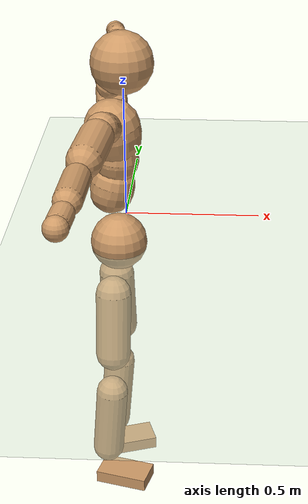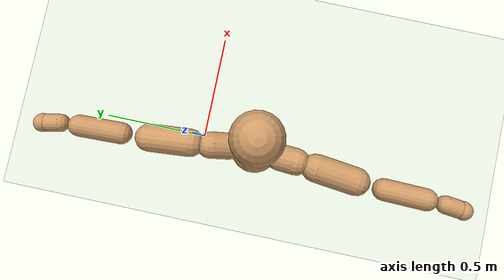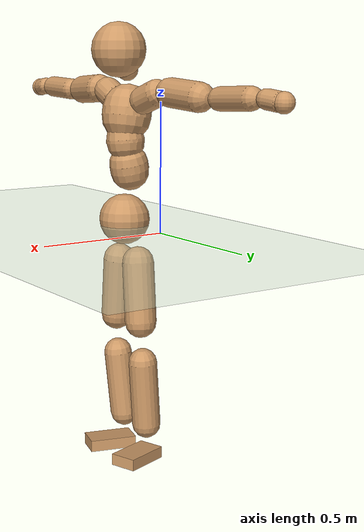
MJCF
<mujoco model="humanoid">
  <compiler coordinate="local"/>
  <default>
    <joint damping="0.0" armature="0.01" stiffness="0.0" limited="true"/>
    <geom conaffinity="1" condim="3" contype="7" margin="0.001" rgba="0.8 0.6 .4 1"/>
  </default>
  <asset>
    <texture type="skybox" builtin="gradient" rgb1=".4 .5 .6" rgb2="0 0 0" width="100" height="100"/>
    <texture builtin="flat" height="1278" mark="cross" markrgb="1 1 1" name="texgeom" random="0.01" rgb1="0.8 0.6 0.4" rgb2="0.8 0.6 0.4" type="cube" width="127"/>
    <texture builtin="checker" height="100" name="texplane" rgb1="0 0 0" rgb2="0.8 0.8 0.8" type="2d" width="100"/>
    <material name="MatPlane" reflectance="0.5" shininess="1" specular="1" texrepeat="60 60" texture="texplane"/>
    <material name="geom" texture="texgeom" texuniform="true"/>
  </asset>
  <worldbody>
    <light cutoff="100" diffuse="1 1 1" dir="-0 0 -1.3" directional="true" exponent="1" pos="0 0 1.3" specular=".1 .1 .1"/>
    <geom conaffinity="1" condim="3" name="floor" pos="0 0 0" rgba="0.8 0.9 0.8 1" size="100 100 .2" type="plane" material="MatPlane"/>
    <body name="Pelvis" pos="-0.0022 -0.263 0.0211">
      <freejoint name="Pelvis"/>
      <geom type="sphere" contype="1" conaffinity="1" density="500" size="0.1015" pos="0.0000 0.0000 0.0000" name="Pelvis"/>
      <body name="L_Hip" pos="-0.0215 0.0608 -0.0884">
        <joint name="L_Hip_x" type="hinge" pos="0 0 0" axis="1 0 0" stiffness="800" damping="80" armature="0.02" range="-180.0000 180.0000"/>
        <joint name="L_Hip_y" type="hinge" pos="0 0 0" axis="0 1 0" stiffness="800" damping="80" armature="0.02" range="-180.0000 180.0000"/>
        <joint name="L_Hip_z" type="hinge" pos="0 0 0" axis="0 0 1" stiffness="800" damping="80" armature="0.02" range="-180.0000 180.0000"/>
        <geom type="capsule" contype="1" conaffinity="1" density="500" fromto="0.0015 0.0087 -0.0803 0.0060 0.0349 -0.3211" size="0.064" name="L_Hip"/>
        <body name="L_Knee" pos="0.0074 0.0437 -0.4013">
          <joint name="L_Knee_x" type="hinge" pos="0 0 0" axis="1 0 0" stiffness="800" damping="80" armature="0.02" range="-180.0000 180.0000"/>
          <joint name="L_Knee_y" type="hinge" pos="0 0 0" axis="0 1 0" stiffness="800" damping="80" armature="0.02" range="-180.0000 180.0000"/>
          <joint name="L_Knee_z" type="hinge" pos="0 0 0" axis="0 0 1" stiffness="800" damping="80" armature="0.02" range="-180.0000 180.0000"/>
          <geom type="capsule" contype="1" conaffinity="1" density="500" fromto="-0.0080 -0.0033 -0.0895 -0.0320 -0.0131 -0.3580" size="0.0579" name="L_Knee"/>
          <body name="L_Ankle" pos="-0.04 -0.0163 -0.4475">
            <joint name="L_Ankle_x" type="hinge" pos="0 0 0" axis="1 0 0" stiffness="800" damping="80" armature="0.02" range="-180.0000 180.0000"/>
            <joint name="L_Ankle_y" type="hinge" pos="0 0 0" axis="0 1 0" stiffness="800" damping="80" armature="0.02" range="-180.0000 180.0000"/>
            <joint name="L_Ankle_z" type="hinge" pos="0 0 0" axis="0 0 1" stiffness="800" damping="80" armature="0.02" range="-180.0000 180.0000"/>
            <geom type="box" contype="1" conaffinity="1" density="500" pos="0.0648 0.0217 -0.0321" size="0.0938 0.0548 0.0232" quat="0.9870 0.0000 0.0000 0.1610" name="L_Ankle"/>
            <body name="L_Toe" pos="0.1295 0.0434 -0.0642">
              <joint name="L_Toe_x" type="hinge" pos="0 0 0" axis="1 0 0" stiffness="500" damping="50" armature="0.02" range="-180.0000 180.0000"/>
              <joint name="L_Toe_y" type="hinge" pos="0 0 0" axis="0 1 0" stiffness="500" damping="50" armature="0.02" range="-180.0000 180.0000"/>
              <joint name="L_Toe_z" type="hinge" pos="0 0 0" axis="0 0 1" stiffness="500" damping="50" armature="0.02" range="-180.0000 180.0000"/>
              <geom type="box" contype="1" conaffinity="1" density="500" pos="0.0000 0.0000 0.0321" size="0.0011 0.0026 0.0012" quat="0.9862 0.0000 0.0000 0.1655" name="L_Toe"/>
            </body>
          </body>
        </body>
      </body>
      <body name="R_Hip" pos="-0.0174 -0.0627 -0.0971">
        <joint name="R_Hip_x" type="hinge" pos="0 0 0" axis="1 0 0" stiffness="800" damping="80" armature="0.02" range="-180.0000 180.0000"/>
        <joint name="R_Hip_y" type="hinge" pos="0 0 0" axis="0 1 0" stiffness="800" damping="80" armature="0.02" range="-180.0000 180.0000"/>
        <joint name="R_Hip_z" type="hinge" pos="0 0 0" axis="0 0 1" stiffness="800" damping="80" armature="0.02" range="-180.0000 180.0000"/>
        <geom type="capsule" contype="1" conaffinity="1" density="500" fromto="-0.0012 -0.0091 -0.0799 -0.0050 -0.0362 -0.3196" size="0.0636" name="R_Hip"/>
        <body name="R_Knee" pos="-0.0062 -0.0453 -0.3995">
          <joint name="R_Knee_x" type="hinge" pos="0 0 0" axis="1 0 0" stiffness="800" damping="80" armature="0.02" range="-180.0000 180.0000"/>
          <joint name="R_Knee_y" type="hinge" pos="0 0 0" axis="0 1 0" stiffness="800" damping="80" armature="0.02" range="-180.0000 180.0000"/>
          <joint name="R_Knee_z" type="hinge" pos="0 0 0" axis="0 0 1" stiffness="800" damping="80" armature="0.02" range="-180.0000 180.0000"/>
          <geom type="capsule" contype="1" conaffinity="1" density="500" fromto="-0.0074 0.0042 -0.0882 -0.0296 0.0168 -0.3528" size="0.058" name="R_Knee"/>
          <body name="R_Ankle" pos="-0.037 0.021 -0.441">
            <joint name="R_Ankle_x" type="hinge" pos="0 0 0" axis="1 0 0" stiffness="800" damping="80" armature="0.02" range="-180.0000 180.0000"/>
            <joint name="R_Ankle_y" type="hinge" pos="0 0 0" axis="0 1 0" stiffness="800" damping="80" armature="0.02" range="-180.0000 180.0000"/>
            <joint name="R_Ankle_z" type="hinge" pos="0 0 0" axis="0 0 1" stiffness="800" damping="80" armature="0.02" range="-180.0000 180.0000"/>
            <geom type="box" contype="1" conaffinity="1" density="500" pos="0.0700 -0.0185 -0.0327" size="0.0975 0.0545 0.0233" quat="0.9917 0.0000 0.0000 -0.1286" name="R_Ankle"/>
            <body name="R_Toe" pos="0.1401 -0.037 -0.0655">
              <joint name="R_Toe_x" type="hinge" pos="0 0 0" axis="1 0 0" stiffness="500" damping="50" armature="0.02" range="-180.0000 180.0000"/>
              <joint name="R_Toe_y" type="hinge" pos="0 0 0" axis="0 1 0" stiffness="500" damping="50" armature="0.02" range="-180.0000 180.0000"/>
              <joint name="R_Toe_z" type="hinge" pos="0 0 0" axis="0 0 1" stiffness="500" damping="50" armature="0.02" range="-180.0000 180.0000"/>
              <geom type="box" contype="1" conaffinity="1" density="500" pos="0.0000 0.0000 0.0338" size="0.0011 0.0027 0.0012" quat="0.9927 0.0000 0.0000 -0.1203" name="R_Toe"/>
            </body>
          </body>
        </body>
      </body>
      <body name="Torso" pos="-0.0351 0.0046 0.1329">
        <joint name="Torso_x" type="hinge" pos="0 0 0" axis="1 0 0" stiffness="1000" damping="100" armature="0.02" range="-180.0000 180.0000"/>
        <joint name="Torso_y" type="hinge" pos="0 0 0" axis="0 1 0" stiffness="1000" damping="100" armature="0.02" range="-180.0000 180.0000"/>
        <joint name="Torso_z" type="hinge" pos="0 0 0" axis="0 0 1" stiffness="1000" damping="100" armature="0.02" range="-180.0000 180.0000"/>
        <geom type="capsule" contype="1" conaffinity="1" density="500" fromto="0.0197 0.0032 0.0912 0.0131 0.0021 0.0608" size="0.077655" name="Torso"/>
        <body name="Spine" pos="0.0328 0.0053 0.1519">
          <joint name="Spine_x" type="hinge" pos="0 0 0" axis="1 0 0" stiffness="1000" damping="100" armature="0.02" range="-180.0000 180.0000"/>
          <joint name="Spine_y" type="hinge" pos="0 0 0" axis="0 1 0" stiffness="1000" damping="100" armature="0.02" range="-180.0000 180.0000"/>
          <joint name="Spine_z" type="hinge" pos="0 0 0" axis="0 0 1" stiffness="1000" damping="100" armature="0.02" range="-180.0000 180.0000"/>
          <geom type="capsule" contype="1" conaffinity="1" density="500" fromto="0.0024 -0.0017 0.0372 0.0016 -0.0012 0.0248" size="0.076725" name="Spine"/>
          <body name="Chest" pos="0.0039 -0.0029 0.0621">
            <joint name="Chest_x" type="hinge" pos="0 0 0" axis="1 0 0" stiffness="1000" damping="100" armature="0.02" range="-180.0000 180.0000"/>
            <joint name="Chest_y" type="hinge" pos="0 0 0" axis="0 1 0" stiffness="1000" damping="100" armature="0.02" range="-180.0000 180.0000"/>
            <joint name="Chest_z" type="hinge" pos="0 0 0" axis="0 0 1" stiffness="1000" damping="100" armature="0.02" range="-180.0000 180.0000"/>
            <geom type="capsule" contype="1" conaffinity="1" density="500" fromto="-0.0149 -0.0049 0.0930 -0.0100 -0.0033 0.0620" size="0.098208" name="Chest"/>
            <body name="Neck" pos="-0.0308 -0.0136 0.2254">
              <joint name="Neck_x" type="hinge" pos="0 0 0" axis="1 0 0" stiffness="500" damping="50" armature="0.02" range="-180.0000 180.0000"/>
              <joint name="Neck_y" type="hinge" pos="0 0 0" axis="0 1 0" stiffness="500" damping="50" armature="0.02" range="-180.0000 180.0000"/>
              <joint name="Neck_z" type="hinge" pos="0 0 0" axis="0 0 1" stiffness="500" damping="50" armature="0.02" range="-180.0000 180.0000"/>
              <geom type="capsule" contype="1" conaffinity="1" density="500" fromto="0.0110 0.0019 0.0195 0.0440 0.0075 0.0781" size="0.043617" name="Neck"/>
              <body name="Head" pos="0.055 0.0093 0.0977">
                <joint name="Head_x" type="hinge" pos="0 0 0" axis="1 0 0" stiffness="500" damping="50" armature="0.02" range="-180.0000 180.0000"/>
                <joint name="Head_y" type="hinge" pos="0 0 0" axis="0 1 0" stiffness="500" damping="50" armature="0.02" range="-180.0000 180.0000"/>
                <joint name="Head_z" type="hinge" pos="0 0 0" axis="0 0 1" stiffness="500" damping="50" armature="0.02" range="-180.0000 180.0000"/>
                <geom type="sphere" contype="1" conaffinity="1" density="500" size="0.1079" pos="0.0000 0.0000 0.0000" name="Head"/>
              </body>
            </body>
            <body name="L_Thorax" pos="-0.0198 0.0737 0.1208">
              <joint name="L_Thorax_x" type="hinge" pos="0 0 0" axis="1 0 0" stiffness="500" damping="50" armature="0.02" range="-180.0000 180.0000"/>
              <joint name="L_Thorax_y" type="hinge" pos="0 0 0" axis="0 1 0" stiffness="500" damping="50" armature="0.02" range="-180.0000 180.0000"/>
              <joint name="L_Thorax_z" type="hinge" pos="0 0 0" axis="0 0 1" stiffness="500" damping="50" armature="0.02" range="-180.0000 180.0000"/>
              <geom type="capsule" contype="1" conaffinity="1" density="500" fromto="-0.0038 0.0249 0.0096 -0.0151 0.0997 0.0382" size="0.0547" name="L_Thorax"/>
              <body name="L_Shoulder" pos="-0.0189 0.1247 0.0478">
                <joint name="L_Shoulder_x" type="hinge" pos="0 0 0" axis="1 0 0" stiffness="500" damping="50" armature="0.02" range="-720.0000 720.0000"/>
                <joint name="L_Shoulder_y" type="hinge" pos="0 0 0" axis="0 1 0" stiffness="500" damping="50" armature="0.02" range="-720.0000 720.0000"/>
                <joint name="L_Shoulder_z" type="hinge" pos="0 0 0" axis="0 0 1" stiffness="500" damping="50" armature="0.02" range="-720.0000 720.0000"/>
                <geom type="capsule" contype="1" conaffinity="1" density="500" fromto="-0.0045 0.0559 -0.0039 -0.0182 0.2234 -0.0155" size="0.0567" name="L_Shoulder"/>
                <body name="L_Elbow" pos="-0.0227 0.2793 -0.0194">
                  <joint name="L_Elbow_x" type="hinge" pos="0 0 0" axis="1 0 0" stiffness="500" damping="50" armature="0.02" range="-720.0000 720.0000"/>
                  <joint name="L_Elbow_y" type="hinge" pos="0 0 0" axis="0 1 0" stiffness="500" damping="50" armature="0.02" range="-720.0000 720.0000"/>
                  <joint name="L_Elbow_z" type="hinge" pos="0 0 0" axis="0 0 1" stiffness="500" damping="50" armature="0.02" range="-720.0000 720.0000"/>
                  <geom type="capsule" contype="1" conaffinity="1" density="500" fromto="-0.0016 0.0569 0.0027 -0.0064 0.2275 0.0109" size="0.044" name="L_Elbow"/>
                  <body name="L_Wrist" pos="-0.008 0.2844 0.0137">
                    <joint name="L_Wrist_x" type="hinge" pos="0 0 0" axis="1 0 0" stiffness="300" damping="30" armature="0.02" range="-180.0000 180.0000"/>
                    <joint name="L_Wrist_y" type="hinge" pos="0 0 0" axis="0 1 0" stiffness="300" damping="30" armature="0.02" range="-180.0000 180.0000"/>
                    <joint name="L_Wrist_z" type="hinge" pos="0 0 0" axis="0 0 1" stiffness="300" damping="30" armature="0.02" range="-180.0000 180.0000"/>
                    <geom type="capsule" contype="1" conaffinity="1" density="500" fromto="-0.0034 0.0186 -0.0022 -0.0136 0.0743 -0.0090" size="0.0365" name="L_Wrist"/>
                    <body name="L_Hand" pos="-0.017 0.0929 -0.0112">
                      <joint name="L_Hand_x" type="hinge" pos="0 0 0" axis="1 0 0" stiffness="300" damping="30" armature="0.02" range="-180.0000 180.0000"/>
                      <joint name="L_Hand_y" type="hinge" pos="0 0 0" axis="0 1 0" stiffness="300" damping="30" armature="0.02" range="-180.0000 180.0000"/>
                      <joint name="L_Hand_z" type="hinge" pos="0 0 0" axis="0 0 1" stiffness="300" damping="30" armature="0.02" range="-180.0000 180.0000"/>
                      <geom type="sphere" contype="1" conaffinity="1" density="500" size="0.0381" pos="0.0000 0.0000 0.0000" name="L_Hand"/>
                    </body>
                  </body>
                </body>
              </body>
            </body>
            <body name="R_Thorax" pos="-0.024 -0.0845 0.1188">
              <joint name="R_Thorax_x" type="hinge" pos="0 0 0" axis="1 0 0" stiffness="500" damping="50" armature="0.02" range="-180.0000 180.0000"/>
              <joint name="R_Thorax_y" type="hinge" pos="0 0 0" axis="0 1 0" stiffness="500" damping="50" armature="0.02" range="-180.0000 180.0000"/>
              <joint name="R_Thorax_z" type="hinge" pos="0 0 0" axis="0 0 1" stiffness="500" damping="50" armature="0.02" range="-180.0000 180.0000"/>
              <geom type="capsule" contype="1" conaffinity="1" density="500" fromto="-0.0014 -0.0231 0.0098 -0.0056 -0.0926 0.0392" size="0.0549" name="R_Thorax"/>
              <body name="R_Shoulder" pos="-0.007 -0.1157 0.0491">
                <joint name="R_Shoulder_x" type="hinge" pos="0 0 0" axis="1 0 0" stiffness="500" damping="50" armature="0.02" range="-720.0000 720.0000"/>
                <joint name="R_Shoulder_y" type="hinge" pos="0 0 0" axis="0 1 0" stiffness="500" damping="50" armature="0.02" range="-720.0000 720.0000"/>
                <joint name="R_Shoulder_z" type="hinge" pos="0 0 0" axis="0 0 1" stiffness="500" damping="50" armature="0.02" range="-720.0000 720.0000"/>
                <geom type="capsule" contype="1" conaffinity="1" density="500" fromto="-0.0066 -0.0563 -0.0037 -0.0263 -0.2253 -0.0148" size="0.0578" name="R_Shoulder"/>
                <body name="R_Elbow" pos="-0.0328 -0.2816 -0.0185">
                  <joint name="R_Elbow_x" type="hinge" pos="0 0 0" axis="1 0 0" stiffness="500" damping="50" armature="0.02" range="-720.0000 720.0000"/>
                  <joint name="R_Elbow_y" type="hinge" pos="0 0 0" axis="0 1 0" stiffness="500" damping="50" armature="0.02" range="-720.0000 720.0000"/>
                  <joint name="R_Elbow_z" type="hinge" pos="0 0 0" axis="0 0 1" stiffness="500" damping="50" armature="0.02" range="-720.0000 720.0000"/>
                  <geom type="capsule" contype="1" conaffinity="1" density="500" fromto="-0.0014 -0.0580 0.0018 -0.0057 -0.2319 0.0073" size="0.045" name="R_Elbow"/>
                  <body name="R_Wrist" pos="-0.0072 -0.2899 0.0091">
                    <joint name="R_Wrist_x" type="hinge" pos="0 0 0" axis="1 0 0" stiffness="300" damping="30" armature="0.02" range="-180.0000 180.0000"/>
                    <joint name="R_Wrist_y" type="hinge" pos="0 0 0" axis="0 1 0" stiffness="300" damping="30" armature="0.02" range="-180.0000 180.0000"/>
                    <joint name="R_Wrist_z" type="hinge" pos="0 0 0" axis="0 0 1" stiffness="300" damping="30" armature="0.02" range="-180.0000 180.0000"/>
                    <geom type="capsule" contype="1" conaffinity="1" density="500" fromto="-0.0022 -0.0190 -0.0018 -0.0087 -0.0761 -0.0074" size="0.0372" name="R_Wrist"/>
                    <body name="R_Hand" pos="-0.0109 -0.0951 -0.0092">
                      <joint name="R_Hand_x" type="hinge" pos="0 0 0" axis="1 0 0" stiffness="300" damping="30" armature="0.02" range="-180.0000 180.0000"/>
                      <joint name="R_Hand_y" type="hinge" pos="0 0 0" axis="0 1 0" stiffness="300" damping="30" armature="0.02" range="-180.0000 180.0000"/>
                      <joint name="R_Hand_z" type="hinge" pos="0 0 0" axis="0 0 1" stiffness="300" damping="30" armature="0.02" range="-180.0000 180.0000"/>
                      <geom type="sphere" contype="1" conaffinity="1" density="500" size="0.0387" pos="0.0000 0.0000 0.0000" name="R_Hand"/>
                    </body>
                  </body>
                </body>
              </body>
            </body>
          </body>
        </body>
      </body>
    </body>
  </worldbody>
  <actuator>
    <motor name="L_Hip_x" joint="L_Hip_x" gear="500"/>
    <motor name="L_Hip_y" joint="L_Hip_y" gear="500"/>
    <motor name="L_Hip_z" joint="L_Hip_z" gear="500"/>
    <motor name="L_Knee_x" joint="L_Knee_x" gear="500"/>
    <motor name="L_Knee_y" joint="L_Knee_y" gear="500"/>
    <motor name="L_Knee_z" joint="L_Knee_z" gear="500"/>
    <motor name="L_Ankle_x" joint="L_Ankle_x" gear="500"/>
    <motor name="L_Ankle_y" joint="L_Ankle_y" gear="500"/>
    <motor name="L_Ankle_z" joint="L_Ankle_z" gear="500"/>
    <motor name="L_Toe_x" joint="L_Toe_x" gear="500"/>
    <motor name="L_Toe_y" joint="L_Toe_y" gear="500"/>
    <motor name="L_Toe_z" joint="L_Toe_z" gear="500"/>
    <motor name="R_Hip_x" joint="R_Hip_x" gear="500"/>
    <motor name="R_Hip_y" joint="R_Hip_y" gear="500"/>
    <motor name="R_Hip_z" joint="R_Hip_z" gear="500"/>
    <motor name="R_Knee_x" joint="R_Knee_x" gear="500"/>
    <motor name="R_Knee_y" joint="R_Knee_y" gear="500"/>
    <motor name="R_Knee_z" joint="R_Knee_z" gear="500"/>
    <motor name="R_Ankle_x" joint="R_Ankle_x" gear="500"/>
    <motor name="R_Ankle_y" joint="R_Ankle_y" gear="500"/>
    <motor name="R_Ankle_z" joint="R_Ankle_z" gear="500"/>
    <motor name="R_Toe_x" joint="R_Toe_x" gear="500"/>
    <motor name="R_Toe_y" joint="R_Toe_y" gear="500"/>
    <motor name="R_Toe_z" joint="R_Toe_z" gear="500"/>
    <motor name="Torso_x" joint="Torso_x" gear="500"/>
    <motor name="Torso_y" joint="Torso_y" gear="500"/>
    <motor name="Torso_z" joint="Torso_z" gear="500"/>
    <motor name="Spine_x" joint="Spine_x" gear="500"/>
    <motor name="Spine_y" joint="Spine_y" gear="500"/>
    <motor name="Spine_z" joint="Spine_z" gear="500"/>
    <motor name="Chest_x" joint="Chest_x" gear="500"/>
    <motor name="Chest_y" joint="Chest_y" gear="500"/>
    <motor name="Chest_z" joint="Chest_z" gear="500"/>
    <motor name="Neck_x" joint="Neck_x" gear="500"/>
    <motor name="Neck_y" joint="Neck_y" gear="500"/>
    <motor name="Neck_z" joint="Neck_z" gear="500"/>
    <motor name="Head_x" joint="Head_x" gear="500"/>
    <motor name="Head_y" joint="Head_y" gear="500"/>
    <motor name="Head_z" joint="Head_z" gear="500"/>
    <motor name="L_Thorax_x" joint="L_Thorax_x" gear="500"/>
    <motor name="L_Thorax_y" joint="L_Thorax_y" gear="500"/>
    <motor name="L_Thorax_z" joint="L_Thorax_z" gear="500"/>
    <motor name="L_Shoulder_x" joint="L_Shoulder_x" gear="500"/>
    <motor name="L_Shoulder_y" joint="L_Shoulder_y" gear="500"/>
    <motor name="L_Shoulder_z" joint="L_Shoulder_z" gear="500"/>
    <motor name="L_Elbow_x" joint="L_Elbow_x" gear="500"/>
    <motor name="L_Elbow_y" joint="L_Elbow_y" gear="500"/>
    <motor name="L_Elbow_z" joint="L_Elbow_z" gear="500"/>
    <motor name="L_Wrist_x" joint="L_Wrist_x" gear="500"/>
    <motor name="L_Wrist_y" joint="L_Wrist_y" gear="500"/>
    <motor name="L_Wrist_z" joint="L_Wrist_z" gear="500"/>
    <motor name="L_Hand_x" joint="L_Hand_x" gear="500"/>
    <motor name="L_Hand_y" joint="L_Hand_y" gear="500"/>
    <motor name="L_Hand_z" joint="L_Hand_z" gear="500"/>
    <motor name="R_Thorax_x" joint="R_Thorax_x" gear="500"/>
    <motor name="R_Thorax_y" joint="R_Thorax_y" gear="500"/>
    <motor name="R_Thorax_z" joint="R_Thorax_z" gear="500"/>
    <motor name="R_Shoulder_x" joint="R_Shoulder_x" gear="500"/>
    <motor name="R_Shoulder_y" joint="R_Shoulder_y" gear="500"/>
    <motor name="R_Shoulder_z" joint="R_Shoulder_z" gear="500"/>
    <motor name="R_Elbow_x" joint="R_Elbow_x" gear="500"/>
    <motor name="R_Elbow_y" joint="R_Elbow_y" gear="500"/>
    <motor name="R_Elbow_z" joint="R_Elbow_z" gear="500"/>
    <motor name="R_Wrist_x" joint="R_Wrist_x" gear="500"/>
    <motor name="R_Wrist_y" joint="R_Wrist_y" gear="500"/>
    <motor name="R_Wrist_z" joint="R_Wrist_z" gear="500"/>
    <motor name="R_Hand_x" joint="R_Hand_x" gear="500"/>
    <motor name="R_Hand_y" joint="R_Hand_y" gear="500"/>
    <motor name="R_Hand_z" joint="R_Hand_z" gear="500"/>
  </actuator>
  <contact>
    <exclude body1="Torso" body2="Chest"/>
    <exclude body1="Head" body2="Chest"/>
    <exclude body1="R_Knee" body2="R_Toe"/>
    <exclude body1="R_Knee" body2="L_Ankle"/>
    <exclude body1="R_Knee" body2="L_Toe"/>
    <exclude body1="L_Knee" body2="L_Toe"/>
    <exclude body1="L_Knee" body2="R_Ankle"/>
    <exclude body1="L_Knee" body2="R_Toe"/>
    <exclude body1="L_Shoulder" body2="Chest"/>
    <exclude body1="R_Shoulder" body2="Chest"/>
  </contact>
  <sensor/>
  <size njmax="700" nconmax="700"/>
</mujoco>
